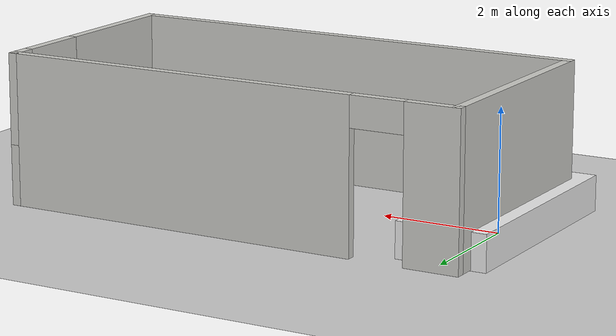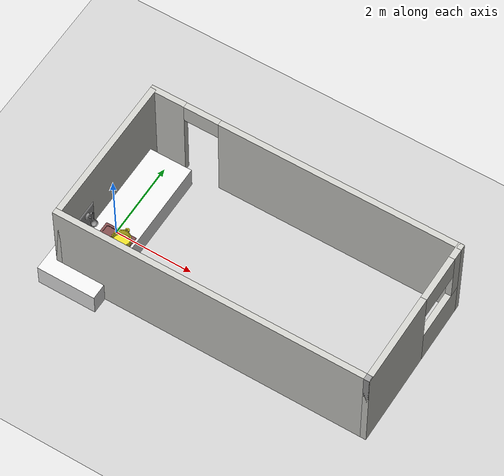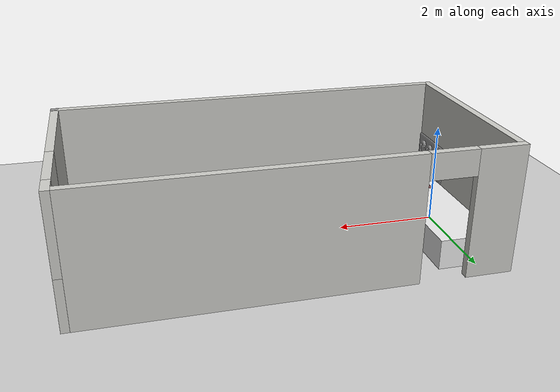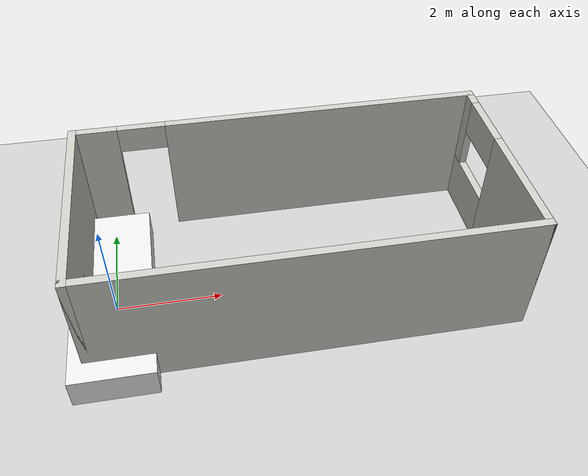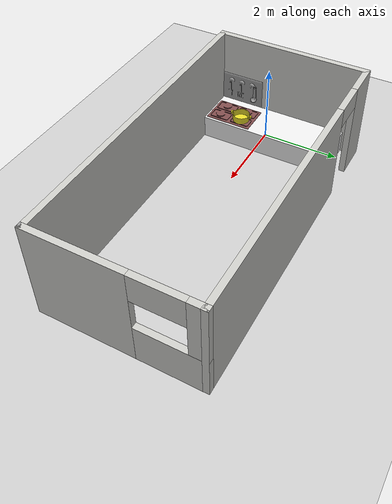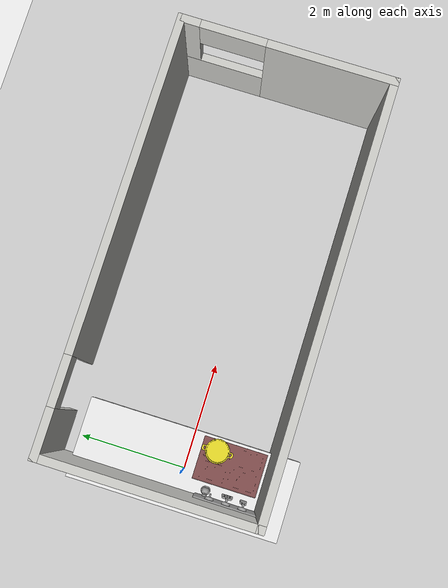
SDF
<sdf version="1.6">
 <world name="ur5_robot_base">
  <gravity>0 0 -9.81</gravity>
  <physics name="default_physics" default="0" type="ode">
   <max_step_size>0.001</max_step_size>
   <real_time_factor>1</real_time_factor>
   <real_time_update_rate>1000</real_time_update_rate>
  </physics>
  <scene><ambient>0.4 0.4 0.4 1</ambient><background>0.7 0.7 0.7 1</background><shadows>1</shadows></scene>
  <include><uri>model://sun</uri></include>
  <include><uri>model://ground_plane</uri></include>
  <model name="ur5_kitchenbase">
   <include><uri>model://ur5_kitchenbase</uri><pose>0 0 -0.4 0 0 0</pose></include>
  </model>
  <model name="ur5_kitchentest2">
   <include><uri>model://ur5_kitchentest2</uri><pose>3.5 0.4 0 0 0 0</pose></include>
  </model>
  <model name="gaslenge">
   <include><uri>model://gaslenge</uri><pose>0.3 -0.8 0.59 0 0 1.57</pose></include>
  </model>
  <model name="nambi"><include><uri>model://nambi</uri><pose>0.3 -0.8 0.61 0 0 1.57</pose></include></model>
  <model name="gugja"><include><uri>model://gugja</uri><pose>-0.37 -0.8 1.0 0 0 0</pose></include></model>
 </world>
</sdf>

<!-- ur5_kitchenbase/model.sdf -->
<sdf version="1.6">
  <model name="ur5_kitchenbase">
    <static>true</static>

    <link name="top_plate">
      <pose>0 0 0.58 0 0 0</pose>
      <collision name="top_plate_collision">
        <geometry>
          <box>
            <size>1.5 4 0.8</size>
          </box>
        </geometry>
        <surface>
          <contact>
            <collide_bitmask>0x01</collide_bitmask>
          </contact>
        </surface>
      </collision>
      <visual name="top_plate_visual">
        <geometry>
          <box>
            <size>1.5 4 0.8</size>
          </box>
        </geometry>
        <material>
          <script>
            <uri>file://media/materials/scripts/gazebo.material</uri>
            <name>Gazebo/White</name>
          </script>
        </material>
      </visual>
    </link>
  </model>
</sdf>

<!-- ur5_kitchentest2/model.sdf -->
<sdf version='1.6'>
  <model name='ur5_kitchentest2'>
    <pose frame=''>-0.705 1.065 0 0 -0 0</pose>
    <link name='Wall_21'>
      <visual name='Wall_21_Visual'>
        <pose frame=''>0 0 1.25 0 -0 0</pose>
        <geometry>
          <box>
            <size>0.15 0.15 2.5</size>
          </box>
        </geometry>
        <material>
          <script>
            <uri>file://media/materials/scripts/gazebo.material</uri>
            <name>Gazebo/Grey</name>
          </script>
          <ambient>1 1 1 1</ambient>
        </material>
        <meta>
          <layer>0</layer>
        </meta>
      </visual>
      <pose frame=''>3.925 -1.925 0 0 -0 0</pose>
    </link>
    <link name='Wall_22'>
      <pose frame=''>3.925 0 0 0 -0 1.5708</pose>
      <visual name='Wall_22_Visual_0'>
        <pose frame=''>-0.8125 0 1.25 0 -0 0</pose>
        <geometry>
          <box>
            <size>2.375 0.15 2.5</size>
          </box>
        </geometry>
        <material>
          <script>
            <uri>file://media/materials/scripts/gazebo.material</uri>
            <name>Gazebo/CeilingTiled</name>
          </script>
          <ambient>1 1 1 1</ambient>
        </material>
        <meta>
          <layer>0</layer>
        </meta>
      </visual>

      <visual name='Wall_22_Visual_1'>
        <pose frame=''>1.1875 0 0.5 0 -0 0</pose>
        <geometry>
          <box>
            <size>1.625 0.15 1</size>
          </box>
        </geometry>
        <material>
          <script>
            <uri>file://media/materials/scripts/gazebo.material</uri>
            <name>Gazebo/CeilingTiled</name>
          </script>
          <ambient>1 1 1 1</ambient>
        </material>
        <meta>
          <layer>0</layer>
        </meta>
      </visual>

      <visual name='Wall_22_Visual_2'>
        <pose frame=''>1.7875 0 1.75 0 -0 0</pose>
        <geometry>
          <box>
            <size>0.425 0.15 1.5</size>
          </box>
        </geometry>
        <material>
          <script>
            <uri>file://media/materials/scripts/gazebo.material</uri>
            <name>Gazebo/CeilingTiled</name>
          </script>
          <ambient>1 1 1 1</ambient>
        </material>
        <meta>
          <layer>0</layer>
        </meta>
      </visual>

      <visual name='Wall_22_Visual_3'>
        <pose frame=''>0.975 0 2.15 0 -0 0</pose>
        <geometry>
          <box>
            <size>1.2 0.15 0.7</size>
          </box>
        </geometry>
        <material>
          <script>
            <uri>file://media/materials/scripts/gazebo.material</uri>
            <name>Gazebo/CeilingTiled</name>
          </script>
          <ambient>1 1 1 1</ambient>
        </material>
        <meta>
          <layer>0</layer>
        </meta>
      </visual>

    </link>
    <link name='Wall_23'>
      <pose frame=''>0 1.925 0 0 -0 3.14159</pose>
      <visual name='Wall_23_Visual_0'>
        <pose frame=''>-0.9075 0 1.25 0 -0 0</pose>
        <geometry>
          <box>
            <size>6.185 0.15 2.5</size>
          </box>
        </geometry>
        <material>
          <script>
            <uri>file://media/materials/scripts/gazebo.material</uri>
            <name>Gazebo/CeilingTiled</name>
          </script>
          <ambient>1 1 1 1</ambient>
        </material>
        <meta>
          <layer>0</layer>
        </meta>
      </visual>

      <visual name='Wall_23_Visual_1'>
        <pose frame=''>3.5425 0 1.25 0 -0 0</pose>
        <geometry>
          <box>
            <size>0.915 0.15 2.5</size>
          </box>
        </geometry>
        <material>
          <script>
            <uri>file://media/materials/scripts/gazebo.material</uri>
            <name>Gazebo/CeilingTiled</name>
          </script>
          <ambient>1 1 1 1</ambient>
        </material>
        <meta>
          <layer>0</layer>
        </meta>
      </visual>

      <visual name='Wall_23_Visual_2'>
        <pose frame=''>2.635 0 2.25 0 -0 0</pose>
        <geometry>
          <box>
            <size>0.9 0.15 0.5</size>
          </box>
        </geometry>
        <material>
          <script>
            <uri>file://media/materials/scripts/gazebo.material</uri>
            <name>Gazebo/CeilingTiled</name>
          </script>
          <ambient>1 1 1 1</ambient>
        </material>
        <meta>
          <layer>0</layer>
        </meta>
      </visual>

    </link>
    <link name='Wall_24'>

      <visual name='Wall_24_Visual'>
        <pose frame=''>0 0 1.25 0 -0 0</pose>
        <geometry>
          <box>
            <size>4 0.15 2.5</size>
          </box>
        </geometry>
        <material>
          <script>
            <uri>file://media/materials/scripts/gazebo.material</uri>
            <name>Gazebo/CeilingTiled</name>
          </script>
          <ambient>1 1 1 1</ambient>
        </material>
        <meta>
          <layer>0</layer>
        </meta>
      </visual>
      <pose frame=''>-3.925 0 0 0 -0 -1.5708</pose>
    </link>
    <link name='Wall_27'>

      <visual name='Wall_27_Visual'>
        <pose frame=''>0 0 1.25 0 -0 0</pose>
        <geometry>
          <box>
            <size>8 0.15 2.5</size>
          </box>
        </geometry>
        <material>
          <script>
            <uri>file://media/materials/scripts/gazebo.material</uri>
            <name>Gazebo/CeilingTiled</name>
          </script>
          <ambient>1 1 1 1</ambient>
        </material>
        <meta>
          <layer>0</layer>
        </meta>
      </visual>
      <pose frame=''>0 -1.925 0 0 -0 0</pose>
    </link>
<link name='link_1'>
      <inertial>
        <mass>10</mass>
        <inertia>
          <ixx>0.166667</ixx>
          <ixy>0</ixy>
          <ixz>0</ixz>
          <iyy>0.166667</iyy>
          <iyz>0</iyz>
          <izz>0.166667</izz>
        </inertia>
      </inertial>
      <pose frame=''>5e-05 -2.8e-05 0 0 -0 0</pose>
      <visual name='visual'>
        <pose frame=''>-3.825 -1.3 1 0 -0 0</pose>
        <geometry>
          <mesh>
            <uri>model://guli/mesh/guli.stl</uri>
            <scale>0.01 0.01 0.01</scale>
          </mesh>
        </geometry>
        <material>
          <lighting>1</lighting>
          <script>
            <uri>file://media/materials/scripts/gazebo.material</uri>
            <name>Gazebo/Grey</name>
          </script>
          <shader type='pixel'/>
        </material>
        <transparency>0</transparency>
        <cast_shadows>1</cast_shadows>
      </visual>
      <collision name='collision'>
        <laser_retro>0</laser_retro>
        <max_contacts>10</max_contacts>
        <pose frame=''>-3.825 -1.3 1 0 -0 0</pose>
        <geometry>
          <mesh>
            <uri>model://guli/mesh/guli.stl</uri>
            <scale>0.01 0.01 0.01</scale>
          </mesh>
        </geometry>
        <surface>
          <friction>
            <ode>
              <mu>1</mu>
              <mu2>1</mu2>
              <fdir1>0 0 0</fdir1>
              <slip1>0</slip1>
              <slip2>0</slip2>
            </ode>
            <torsional>
              <coefficient>1</coefficient>
              <patch_radius>0</patch_radius>
              <surface_radius>0</surface_radius>
              <use_patch_radius>1</use_patch_radius>
              <ode>
                <slip>0</slip>
              </ode>
            </torsional>
          </friction>
          <bounce>
            <restitution_coefficient>0</restitution_coefficient>
            <threshold>1e+06</threshold>
          </bounce>
          <contact>
            <collide_without_contact>0</collide_without_contact>
            <collide_without_contact_bitmask>1</collide_without_contact_bitmask>
            <collide_bitmask>1</collide_bitmask>
            <ode>
              <soft_cfm>0</soft_cfm>
              <soft_erp>0.2</soft_erp>
              <kp>1e+13</kp>
              <kd>1</kd>
              <max_vel>0.01</max_vel>
              <min_depth>0</min_depth>
            </ode>
            <bullet>
              <split_impulse>1</split_impulse>
              <split_impulse_penetration_threshold>-0.01</split_impulse_penetration_threshold>
              <soft_cfm>0</soft_cfm>
              <soft_erp>0.2</soft_erp>
              <kp>1e+13</kp>
              <kd>1</kd>
            </bullet>
          </contact>
        </surface>
      </collision>
    </link>
    <static>1</static>
  </model>
</sdf>

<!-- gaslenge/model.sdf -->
<sdf version='1.6'>
  <model name='gaslenge'>
    <link name='link_0'>
      <inertial>
        <mass>1</mass>
        <inertia>
          <ixx>0.166667</ixx>
          <ixy>0</ixy>
          <ixz>0</ixz>
          <iyy>0.166667</iyy>
          <iyz>0</iyz>
          <izz>0.166667</izz>
        </inertia>
        <pose frame=''>0 0 0 0 -0 0</pose>
      </inertial>
      <pose frame=''>0 0 0 0 -0 0</pose>
      <gravity>1</gravity>
      <self_collide>0</self_collide>
      <kinematic>0</kinematic>
      <enable_wind>0</enable_wind>
      <visual name='visual'>
        <pose frame=''>0 0 0 0 -0 0</pose>
        <geometry>
          <mesh>
            <uri>model://gaslenge/mesh/gaslenge.stl</uri>
            <scale>0.01 0.01 0.01</scale>
          </mesh>
        </geometry>
        <material>
          <lighting>1</lighting>
          <script>
            <uri>file://media/materials/scripts/gazebo.material</uri>
            <name>Gazebo/Grey</name>
          </script>
          <shader type='pixel'>
            <normal_map>__default__</normal_map>
          </shader>
          <ambient>0.5 0.3 0.3 1</ambient>
          <diffuse>0.7 0.7 0.7 1</diffuse>
          <specular>0.01 0.01 0.01 1</specular>
          <emissive>0 0 0 1</emissive>
        </material>
        <transparency>0</transparency>
        <cast_shadows>1</cast_shadows>
      </visual>
      <visual name='ModelPreview_0::link_0::visual_1'>
        <pose frame=''>0 0 0 0 -0 0</pose>
        <geometry>
          <mesh>
            <uri>model://gaslenge/mesh/gaslenge.stl</uri>
            <scale>0.01 0.01 0.01</scale>
          </mesh>
        </geometry>
        <material>
          <lighting>1</lighting>
          <script>
            <uri>file://media/materials/scripts/gazebo.material</uri>
            <name>Gazebo/Silver</name>
          </script>
          <shader type='pixel'>
            <normal_map>__default__</normal_map>
          </shader>

          <ambient>0.7 0.7 0.7 1</ambient>
          <diffuse>0.7 0.7 0.7 1</diffuse>
          <specular>0.01 0.01 0.01 1</specular>
          <emissive>0 0 0 1</emissive>
        </material>
        <transparency>0</transparency>
        <cast_shadows>1</cast_shadows>
      </visual>
      <collision name='collision'>
        <laser_retro>0</laser_retro>
        <max_contacts>10</max_contacts>
        <pose frame=''>0 0 0 0 -0 0</pose>
        <geometry>
          <mesh>
            <uri>model://gaslenge/mesh/gaslenge.stl</uri>
            <scale>0.01 0.01 0.01</scale>
          </mesh>
        </geometry>
        <surface>
          <friction>
            <ode>
              <mu>1</mu>
              <mu2>1</mu2>
              <fdir1>0 0 0</fdir1>
              <slip1>0</slip1>
              <slip2>0</slip2>
            </ode>
            <torsional>
              <coefficient>1</coefficient>
              <patch_radius>0</patch_radius>
              <surface_radius>0</surface_radius>
              <use_patch_radius>1</use_patch_radius>
              <ode>
                <slip>0</slip>
              </ode>
            </torsional>
          </friction>
          <bounce>
            <restitution_coefficient>0</restitution_coefficient>
            <threshold>1e+06</threshold>
          </bounce>
          <contact>
            <collide_without_contact>0</collide_without_contact>
            <collide_without_contact_bitmask>1</collide_without_contact_bitmask>
            <collide_bitmask>1</collide_bitmask>
            <ode>
              <soft_cfm>0</soft_cfm>
              <soft_erp>0.2</soft_erp>
              <kp>1e+13</kp>
              <kd>1</kd>
              <max_vel>0.01</max_vel>
              <min_depth>0</min_depth>
            </ode>
            <bullet>
              <split_impulse>1</split_impulse>
              <split_impulse_penetration_threshold>-0.01</split_impulse_penetration_threshold>
              <soft_cfm>0</soft_cfm>
              <soft_erp>0.2</soft_erp>
              <kp>1e+13</kp>
              <kd>1</kd>
            </bullet>
          </contact>
        </surface>
      </collision>
    </link>
    <static>0</static>
    <allow_auto_disable>1</allow_auto_disable>
  </model>
</sdf>

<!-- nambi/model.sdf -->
<sdf version='1.6'>
  <model name='Untitled'>
    <link name='link_0'>
      <inertial>
        <mass>0.001</mass>
        <inertia>
          <ixx>0.166667</ixx>
          <ixy>0</ixy>
          <ixz>0</ixz>
          <iyy>0.166667</iyy>
          <iyz>0</iyz>
          <izz>0.166667</izz>
        </inertia>
      </inertial>
      <pose frame=''>-0 -0 0 0 -0 0</pose>
      <visual name='visual'>
        <pose frame=''>0 0 0 0 -0 0</pose>
        <geometry>
          <mesh>
            <uri>model://nambi/mesh/nambi.stl</uri>
            <scale>0.01 0.01 0.01</scale>
          </mesh>
        </geometry>
        <material>
          <lighting>1</lighting>
          <script>
            <uri>file://media/materials/scripts/gazebo.material</uri>
            <name>Gazebo/Yellow</name>
          </script>
          <shader type='pixel'/>
        </material>
        <transparency>0</transparency>
        <cast_shadows>1</cast_shadows>
      </visual>
      <collision name='collision'>
        <laser_retro>0</laser_retro>
        <max_contacts>5</max_contacts>
        <pose frame=''>0 0 0 0 -0 0</pose>
        <geometry>
          <mesh>
            <uri>model://nambi/mesh/nambi.stl</uri>
            <scale>0.01 0.01 0.01</scale>
          </mesh>
        </geometry>
        <surface>
          <friction>
            <ode>
              <mu>0.1</mu>
              <mu2>0.1</mu2>
              <fdir1>0 0 0</fdir1>
              <slip1>0</slip1>
              <slip2>0</slip2>
            </ode>
            <torsional>
              <coefficient>0.01</coefficient>
              <patch_radius>0</patch_radius>
              <surface_radius>0</surface_radius>
              <use_patch_radius>1</use_patch_radius>
              <ode>
                <slip>0</slip>
              </ode>
            </torsional>
          </friction>
          <bounce>
            <restitution_coefficient>0</restitution_coefficient>
            <threshold>1e+06</threshold>
          </bounce>
          <contact>
            <collide_without_contact>0</collide_without_contact>
            <collide_without_contact_bitmask>1</collide_without_contact_bitmask>
            <collide_bitmask>1</collide_bitmask>
            <ode>
              <soft_cfm>0</soft_cfm>
              <soft_erp>0.2</soft_erp>
              <kp>0</kp>
              <kd>0</kd>
              <max_vel>0.001</max_vel>
              <min_depth>0</min_depth>
            </ode>
            <bullet>
              <split_impulse>1</split_impulse>
              <split_impulse_penetration_threshold>-0.01</split_impulse_penetration_threshold>
              <soft_cfm>0</soft_cfm>
              <soft_erp>0.2</soft_erp>
              <kp>0</kp>
              <kd>0</kd>
            </bullet>
          </contact>
        </surface>
      </collision>
    </link>
    <static>0</static>
    <allow_auto_disable>1</allow_auto_disable>
  </model>
</sdf>

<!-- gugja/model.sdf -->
<sdf version='1.6'>
  <model name='gugja'>
    <link name='link_0'>
      <inertial>
        <mass>0.001</mass>
        <inertia>
          <ixx>0.166667</ixx>
          <ixy>0</ixy>
          <ixz>0</ixz>
          <iyy>0.166667</iyy>
          <iyz>0</iyz>
          <izz>0.166667</izz>
        </inertia>
      </inertial>
      <pose frame=''>2e-06 -2.5e-05 0 0 -0 0</pose>
      <visual name='visual'>
        <pose frame=''>0 0 0 0 -0 0</pose>
        <geometry>
          <mesh>
            <uri>model://gugja/mesh/gugja.stl</uri>
            <scale>0.01 0.01 0.01</scale>
          </mesh>
        </geometry>
        <material>
          <lighting>1</lighting>
          <script>
            <uri>file://media/materials/scripts/gazebo.material</uri>
            <name>Gazebo/Grey</name>
          </script>
          <shader type='pixel'/>
        </material>
        <transparency>0</transparency>
        <cast_shadows>1</cast_shadows>
      </visual>
      <collision name='collision'>
        <laser_retro>0</laser_retro>
        <max_contacts>10</max_contacts>
        <pose frame=''>0 0 0 0 -0 0</pose>
        <geometry>
          <mesh>
            <uri>model://gugja/mesh/gugja.stl</uri>
            <scale>0.01 0.01 0.01</scale>
          </mesh>
        </geometry>
        <surface>
          <friction>
            <ode>
              <mu>0.1</mu>
              <mu2>0.1</mu2>
              <fdir1>0 0 0</fdir1>
              <slip1>0</slip1>
              <slip2>0</slip2>
            </ode>
            <torsional>
              <coefficient>1</coefficient>
              <patch_radius>0</patch_radius>
              <surface_radius>0</surface_radius>
              <use_patch_radius>1</use_patch_radius>
              <ode>
                <slip>0</slip>
              </ode>
            </torsional>
          </friction>
          <bounce>
            <restitution_coefficient>0</restitution_coefficient>
            <threshold>1e+06</threshold>
          </bounce>
          <contact>
            <collide_without_contact>0</collide_without_contact>
            <collide_without_contact_bitmask>1</collide_without_contact_bitmask>
            <collide_bitmask>1</collide_bitmask>
            <ode>
              <soft_cfm>0</soft_cfm>
              <soft_erp>0.2</soft_erp>
              <kp>1e+13</kp>
              <kd>1</kd>
              <max_vel>0.01</max_vel>
              <min_depth>0</min_depth>
            </ode>
            <bullet>
              <split_impulse>1</split_impulse>
              <split_impulse_penetration_threshold>-0.01</split_impulse_penetration_threshold>
              <soft_cfm>0</soft_cfm>
              <soft_erp>0.2</soft_erp>
              <kp>1e+13</kp>
              <kd>1</kd>
            </bullet>
          </contact>
        </surface>
      </collision>
    </link>
    <static>0</static>
    <allow_auto_disable>1</allow_auto_disable>
  </model>
</sdf>
